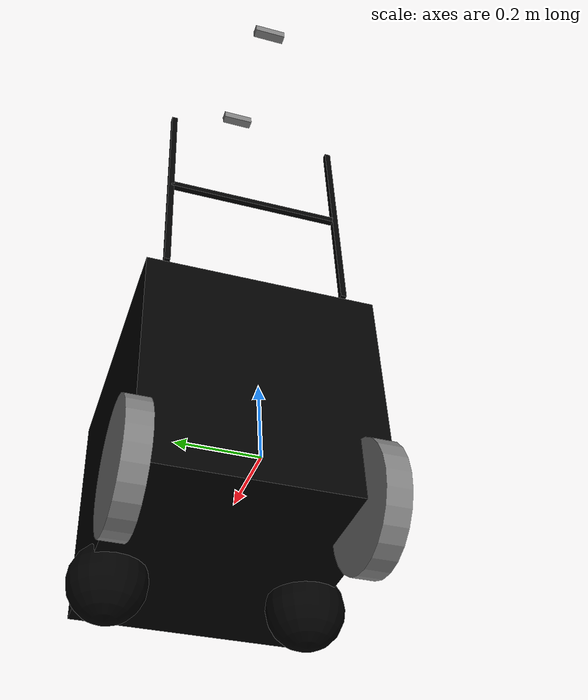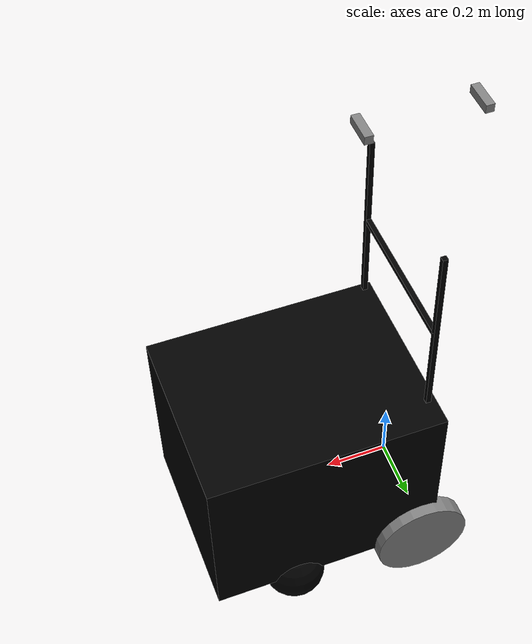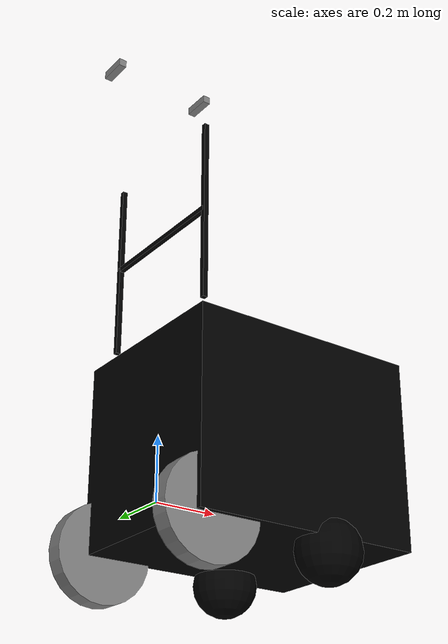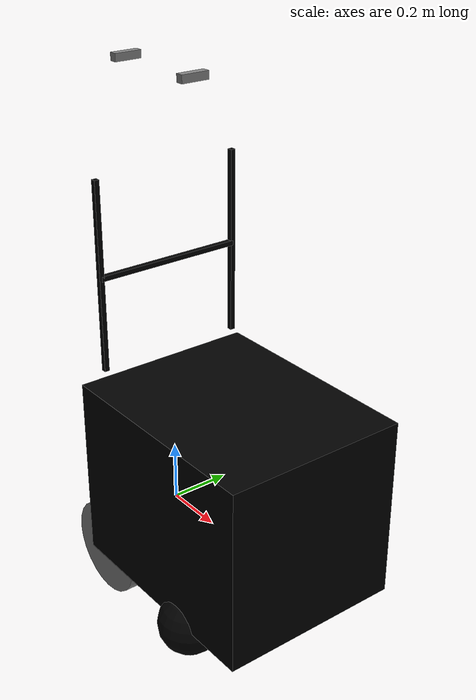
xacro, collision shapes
<?xml version="1.0" encoding="UTF-8"?>
<robot name="wheelchair2" xmlns:xacro="http://www.ros.org/wiki/xacro">

    <xacro:arg name="use_sim_time" default="false" />
    <xacro:arg name="use_nominal_extrinsics" default="false" />
    <xacro:arg name="add_plug" default="false" />
    <xacro:arg name="use_mesh" default="true" />

    <xacro:include filename="$(find wheelchair2_description)/urdf/links_joints.urdf.xacro" />
    <xacro:include filename="$(find wheelchair2_description)/urdf/ducky_kangaroo_ros2_control.urdf.xacro" />
    <xacro:include filename="$(find wheelchair2_description)/urdf/realsense.urdf.xacro" />

    <link name="base_footprint" />

    <joint name="base_footprint_joint" type="fixed">
        <parent link="base_footprint" />
        <child link="base_link" />
        <origin xyz="0.22 0 0.2" rpy="0 0 0" />
    </joint>

    <link name="base_link">
        <pose>0 0 0.1 0 0 0</pose>
        <inertial>
            <mass value="8.96"/>
            <origin xyz="0 0 0" rpy="0 0 0"/>
            <inertia ixx="2.83" ixy="-0.12" ixz="-1.17" iyy="3.47" iyz="0.29" izz="0.73"/>
        </inertial>
        <collision>
            <origin xyz="0.1 0 0" rpy="0 0 0"/>
            <geometry>
                <box size="0.75 0.60 0.60"/>
            </geometry>
            <material name="black"/>
        </collision>
        <visual>
            <origin xyz="0 0 0" rpy="0 0 ${pi}"/>
            <geometry>
                <mesh filename="file://$(find wheelchair2_description)/meshes/wheelchair2.dae" scale="0.01 0.01 0.01"/>
            </geometry>
            <material name="black"/>
        </visual>
    </link>

    <xacro:m1_link_cylinder name="left_wheel" origin_rpy="0 0 0" origin_xyz="0 0 0.027" mass="0.10441" ixx="0.1000000042" ixy="0" ixz="0" iyy="0.1000000042" iyz="0" izz="0.1000000040" radius="0.155" length="0.06" radius_2="0.0028" length_2="0.005" material="grey" />
    <xacro:w_joint name="base_link_to_left_wheel" type="continuous" axis_xyz="0 0 1" axis_rpy="0 0 0" limit_e="100" limit_v="20" damping="1.0" friction="0.01" origin_rpy="-${pi/2} 0 0" origin_xyz="-0.22 0.28 -0.285" parent="base_link" child="left_wheel" />

    <xacro:m1_link_cylinder name="right_wheel" origin_rpy="0 0 0" origin_xyz="0 0 0.027" mass="0.10441" ixx="0.1000000042" ixy="0" ixz="0" iyy="0.1000000042" iyz="0" izz="0.1000000040" radius="0.155" length="0.06" radius_2="0.0028" length_2="0.005" material="grey" />
    <xacro:w_joint name="base_link_to_right_wheel" type="continuous" axis_xyz="0 0 1" axis_rpy="0 0 0" limit_e="100" limit_v="20" damping="1.0" friction="0.01" origin_rpy="-${pi/2} 0 0" origin_xyz="-0.22 -0.28 -0.285" parent="base_link" child="right_wheel" />

    <xacro:m_link_sphere name="caster1" origin_rpy="0 0 0" origin_xyz="0 0 0" mass="0.45164" ixx="0.100000005621" ixy="0.100000001310" ixz="0.100000001649" iyy="0.100000004345" iyz="0.100000002360" izz="0.100000003315" material="black" radius="0.1" radius_2="0.001" />
    <xacro:f_joint name="base_link_to_caster1" type="fixed" axis_xyz="0 0 0" origin_rpy="0 0 0" origin_xyz="0.2 -0.25 -0.33" parent="base_link" child="caster1" />

    <xacro:m_link_sphere name="caster2" origin_rpy="0 0 0" origin_xyz="0 0 0" mass="0.45164" ixx="0.100000005621" ixy="0.100000001310" ixz="0.100000001649" iyy="0.100000004345" iyz="0.100000002360" izz="0.100000003315" material="black" radius="0.1" radius_2="0.001" />
    <xacro:f_joint name="base_link_to_caster2" type="fixed" axis_xyz="0 0 0" origin_rpy="0 0 0" origin_xyz="0.2 0.25 -0.33" parent="base_link" child="caster2" />

    <xacro:f_link_box name="rod1" origin_rpy="0 0 0" origin_xyz="0 0 0" mass="0.45164" ixx="0.100000005621" ixy="0.100000001310" ixz="0.100000001649" iyy="0.100000004345" iyz="0.100000002360" izz="0.100000003315" material="black" size="0.016 0.016 0.6" />
    <xacro:f_joint name="base_link_to_rod1" type="fixed" axis_xyz="0 0 0" origin_rpy="0 0 0" origin_xyz="-0.23 0.24 0.65" parent="base_link" child="rod1" />

    <xacro:f_link_box name="rod2" origin_rpy="0 0 0" origin_xyz="0 0 0" mass="0.45164" ixx="0.100000005621" ixy="0.100000001310" ixz="0.100000001649" iyy="0.100000004345" iyz="0.100000002360" izz="0.100000003315" material="black" size="0.016 0.016 0.6" />
    <xacro:f_joint name="base_link_to_rod2" type="fixed" axis_xyz="0 0 0" origin_rpy="0 0 0" origin_xyz="-0.23 -0.24 0.65" parent="base_link" child="rod2" />

    <xacro:f_link_box name="camera_base_rod" origin_rpy="0 0 0" origin_xyz="0 0 0" mass="0.45164" ixx="0.100000005621" ixy="0.100000001310" ixz="0.100000001649" iyy="0.100000004345" iyz="0.100000002360" izz="0.100000003315" material="black" size="0.016 0.48 0.016" />
    <xacro:f_joint name="base_link_to_camera_base_rod" type="fixed" axis_xyz="0 0 0" origin_rpy="0 0 0" origin_xyz="-0.23 0 0.650" parent="base_link" child="camera_base_rod" />

    <link name="camera_mount_link"/>
    <joint name="base_to_camera_mount" type="fixed">
        <parent link="base_link"/>
        <child link="camera_mount_link"/>
        <origin xyz="-0.19159 0 1.2144" rpy="0 0 0" />
    </joint>

    <xacro:realsense name="camera1" topics_ns="camera1" parent="camera_mount_link" use_sim_time="$(arg use_sim_time)">
        <origin xyz="0 0 0" rpy="0 0 0"/>
    </xacro:realsense>

    <xacro:realsense name="camera2" topics_ns="camera2" parent="camera_mount_link" use_sim_time="$(arg use_sim_time)">
        <origin xyz="-0.13 0 0" rpy="0 0 -${pi}"/>
    </xacro:realsense>

    <link name="livox_frame"/>
    <joint name="camera_link_to_livox_frame" type="fixed">
        <parent link="camera1_link" />
        <child link="livox_frame" />
        <origin xyz="-0.064156 0 -0.064846" rpy="-${pi} -0.0131 0" />
        <axis xyz="0 0 0" />
    </joint>

    <xacro:kangaroo_x2_driver name="kangaroo_ros2_control" prefix="" use_sim_time="$(arg use_sim_time)"></xacro:kangaroo_x2_driver>

    <xacro:if value="$(arg use_sim_time)">
        <gazebo>
            <plugin name="gz_ros2_control::GazeboSimROS2ControlPlugin" filename="libgz_ros2_control-system.so">
                <parameters>$(find wheelchair2_control)/config/wheelchair2_controllers.yaml</parameters>
            </plugin>
        </gazebo>
        <xacro:include filename="$(find wheelchair2_gazebo)/urdf/wheelchair2_gazebo.urdf.xacro" />
        <xacro:include filename="$(find wheelchair2_gazebo)/urdf/livox.urdf.xacro" />
    </xacro:if>

</robot>

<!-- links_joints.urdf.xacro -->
<robot xmlns:xacro="http://www.ros.org/wiki/xacro">
	<!--Include
	Files-->
	<xacro:include filename="$(find wheelchair2_description)/urdf/common_properties.urdf.xacro" />
	<!--macro
	for cylinder shaped links(r,lwheels and lidar)-->
	<xacro:macro name="m_link_cylinder"
		params="name origin_xyz origin_rpy mass ixx ixy ixz iyy iyz izz filename scale material ">
		<link name="${name}">
			<inertial>				<!--Inertial
				valuse include origin, mass and inertias as per CAD model-->
				<mass value="${mass}" />
				<origin rpy="${origin_rpy}" xyz="${origin_xyz}" />
				<inertia ixx="${ixx}" ixy="${ixy}" ixz="${ixz}" iyy="${iyy}" iyz="${iyz}" izz="${izz}" />
				<!--
				Taken at the output coordinate system-->
			</inertial>
			<collision>				<!-- Collision values include dimensions and origin-->
				<origin rpy="${origin_rpy}" xyz="${origin_xyz}" />
				<geometry>
					<mesh filename="${filename}" scale="${scale}" />
				</geometry>
			</collision>
			<visual>
				<origin rpy="${origin_rpy}" xyz="${origin_xyz}" />
				<geometry>
					<mesh filename="${filename}" scale="${scale}" />
				</geometry>
				<material name="${material}" />
			</visual>
		</link>
	</xacro:macro>

	<!--macro
	for cylinder shaped links(r,lwheels and lidar)-->
	<xacro:macro name="m1_link_cylinder"
		params="name origin_xyz origin_rpy mass radius length radius_2 length_2 ixx ixy ixz iyy iyz izz material ">
		<link name="${name}">
			<inertial>				<!--Inertial
				valuse include origin, mass and inertias as per CAD model-->
				<mass value="${mass}" />
				<origin rpy="${origin_rpy}" xyz="${origin_xyz}" />
				<inertia ixx="${ixx}" ixy="${ixy}" ixz="${ixz}" iyy="${iyy}" iyz="${iyz}" izz="${izz}" />
				<!--
				Taken at the output coordinate system-->
			</inertial>
			<collision>				<!-- Collision values include dimensions and origin-->
				<origin rpy="${origin_rpy}" xyz="${origin_xyz}" />
				<geometry>
					<cylinder radius="${radius}" length="${length}" />
				</geometry>
			</collision>
			<visual>				<!-- Visual valuse include origin, material and mesh to make model look similar to
				real robot-->
				<origin rpy="${origin_rpy}" xyz="${origin_xyz}" />
				<geometry>
					<cylinder radius="${radius_2}" length="${length_2}" />
				</geometry>
				<material name="${material}" />
			</visual>
		</link>
	</xacro:macro>

	<!--macro
	for box shaped links(r,lwheels and lidar)-->
	<xacro:macro name="m_link_box"
		params="name origin_xyz origin_rpy size mass ixx ixy ixz iyy iyz izz v_origin_xyz v_origin_rpy filename scale material ">
		<link name="${name}">
			<inertial>				<!--Inertial
				valuse include origin, mass and inertias as per CAD model-->
				<mass value="${mass}" />
				<origin rpy="${origin_rpy}" xyz="${origin_xyz}" />
				<inertia ixx="${ixx}" ixy="${ixy}" ixz="${ixz}" iyy="${iyy}" iyz="${iyz}" izz="${izz}" />
				<!--
				Taken at the output coordinate system-->
			</inertial>
			<collision>				<!-- Collision values include dimensions and origin-->
				<origin rpy="${origin_rpy}" xyz="${origin_xyz}" />
				<geometry>
					<box size="${size}" />
				</geometry>
			</collision>
			<visual>				<!-- Visual valuse include origin, material and mesh 0.057 0.083 0.29to make model
				look similar to real robot-->
				<origin rpy="${v_origin_rpy}" xyz="${v_origin_xyz}" />
				<geometry>
				</geometry>
				<material name="${material}" />
			</visual>
		</link>
	</xacro:macro>

	<xacro:macro name="f_link_box"
		params="name origin_xyz origin_rpy size mass ixx ixy ixz iyy iyz izz material ">
		<link name="${name}">
			<inertial>				<!--Inertial
				valuse include origin, mass and inertias as per CAD model-->
				<mass value="${mass}" />
				<origin rpy="${origin_rpy}" xyz="${origin_xyz}" />
				<inertia ixx="${ixx}" ixy="${ixy}" ixz="${ixz}" iyy="${iyy}" iyz="${iyz}" izz="${izz}" />
				<!--
				Taken at the output coordinate system-->
			</inertial>
			<collision>				<!-- Collision values include dimensions and origin-->
				<origin rpy="${origin_rpy}" xyz="${origin_xyz}" />
				<geometry>
					<box size="${size}" />
				</geometry>
			</collision>
			<visual>				<!-- Visual valuse include origin, material and mesh to make model look similar to
				real robot-->
				<origin rpy="${origin_rpy}" xyz="${origin_xyz}" />
				<geometry>
					<box size="${size}" />
				</geometry>
				<material name="${material}" />
			</visual>
		</link>
	</xacro:macro>

	<xacro:macro name="m_link_sphere"
		params="name origin_xyz origin_rpy radius radius_2 mass ixx ixy ixz iyy iyz izz material">
		<link name="${name}">
			<inertial>				<!--Inertial
				valuse include origin, mass and inertias as per CAD model-->
				<mass value="${mass}" />
				<origin rpy="${origin_rpy}" xyz="${origin_xyz}" />
				<inertia ixx="${ixx}" ixy="${ixy}" ixz="${ixz}" iyy="${iyy}" iyz="${iyz}" izz="${izz}" />
			</inertial>
			<collision>				<!-- Collision values include dimensions and origin-->
				<origin rpy="${origin_rpy}" xyz="${origin_xyz}" />
				<geometry>
					<sphere radius="${radius}" />
				</geometry>
			</collision>
			<visual>				<!-- Visual valuse include origin, material and mesh to make model look similar to
				real robot-->
				<origin rpy="${origin_rpy}" xyz="${origin_xyz}" />
				<geometry>
					<sphere radius="${radius_2}" />
				</geometry>
				<material name="${material}" />
			</visual>
		</link>
	</xacro:macro>
	<!-- macro of moving joints like l,rwheels-->
	<!-- It includes parent link, child link, limits, axis, origin, dynamics and transmission of the
	robot-->
	<xacro:macro name="m_joint"
		params="name type axis_xyz axis_rpy origin_rpy origin_xyz parent limit_e limit_v lower upper child damping friction ">
		<joint name="${name}" type="${type}">
			<axis xyz="${axis_xyz}" rpy="${axis_rpy}" />
			<limit effort="${limit_e}" velocity="${limit_v}" lower="${lower}" upper="${upper}" />
			<origin rpy="${origin_rpy}" xyz="${origin_xyz}" />
			<dynamics damping="${damping}" friction="${friction}" />
			<parent link="${parent}" />
			<child link="${child}" />
		</joint>
	</xacro:macro>

	<xacro:macro name="w_joint"
		params="name type axis_xyz axis_rpy origin_rpy origin_xyz parent limit_e limit_v child damping friction ">
		<joint name="${name}" type="${type}">
			<axis xyz="${axis_xyz}" rpy="${axis_rpy}" />
			<limit effort="${limit_e}" velocity="${limit_v}" />
			<origin rpy="${origin_rpy}" xyz="${origin_xyz}" />
			<dynamics damping="${damping}" friction="${friction}" />
			<parent link="${parent}" />
			<child link="${child}" />
		</joint>
	</xacro:macro>

	<xacro:macro name="m2_joint"
		params="name type axis_xyz axis_rpy origin_rpy origin_xyz parent limit_e limit_v lower upper child damping friction ">
		<joint name="${name}" type="${type}">
			<axis xyz="${axis_xyz}" rpy="${axis_rpy}" />
			<limit effort="${limit_e}" velocity="${limit_v}" lower="${lower}" upper="${upper}" />
			<origin rpy="${origin_rpy}" xyz="${origin_xyz}" />
			<dynamics damping="${damping}" friction="${friction}" />
			<parent link="${parent}" />
			<child link="${child}" />
		</joint>
	</xacro:macro>

	<xacro:macro name="mimic_joint"
		params="name type axis_xyz axis_rpy origin_rpy origin_xyz parent joint multiplier offset limit_e limit_v lower upper child damping friction ">
		<joint name="${name}" type="${type}">
			<axis xyz="${axis_xyz}" rpy="${axis_rpy}" />
			<limit effort="${limit_e}" velocity="${limit_v}" lower="${lower}" upper="${upper}" />
			<origin rpy="${origin_rpy}" xyz="${origin_xyz}" />
			<dynamics damping="${damping}" friction="${friction}" />
			<parent link="${parent}" />
			<child link="${child}" />
			<mimic joint="${joint}" multiplier="${multiplier}" offset="${offset}" />
		</joint>
	</xacro:macro>

	<!-- macro of fixed joints like casters and rplidar-->
	<!-- It includes parent link, child link, axis and origin of the robot-->
	<xacro:macro name="f_joint" params="name type axis_xyz origin_rpy origin_xyz parent child">
		<joint name="${name}" type="${type}">
			<axis xyz="${axis_xyz}" />
			<origin rpy="${origin_rpy}" xyz="${origin_xyz}" />
			<parent link="${parent}" />
			<child link="${child}" />
		</joint>
	</xacro:macro>

</robot>

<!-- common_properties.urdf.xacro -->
<robot name="xacro_properties" xmlns:xacro="http://www.ros.org/wiki/xacro">

	<material name="grey">
		<color rgba="0.5 0.5 0.5 1.0" />
	</material>

	<material name="black">
		<color rgba="0.0 0.0 0.0 1.0" />
	</material>

	<material name="red">
		<color rgba="1.0 0.0 0.0 1.0" />
	</material>
	<material name="green">
		<color rgba="0.0 1.0 0.0 1.0" />
	</material>

</robot>

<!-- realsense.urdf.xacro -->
<robot name="realsense"
	xmlns:xacro="http://ros.org/wiki/xacro">
	<xacro:macro name="realsense" params="name:=camera topics_ns:=camera pointcloud:=false parent *origin use_sim_time">
		<xacro:property name="M_PI" value="3.1415926535897931" />

		<!-- The following values are approximate, and the camera node
     publishing TF values with actual calibrated camera extrinsic values -->
		<xacro:property name="d435_cam_depth_to_left_ir_offset" value="0.0" />
		<xacro:property name="d435_cam_depth_to_right_ir_offset" value="-0.050" />
		<xacro:property name="d435_cam_depth_to_color_offset" value="0.015" />

		<!-- The following values model the aluminum peripherial case for the
  	D435 camera, with the camera joint represented by the actual
  	peripherial camera tripod mount -->
		<xacro:property name="d435_cam_width" value="0.090" />
		<xacro:property name="d435_cam_height" value="0.025" />
		<xacro:property name="d435_cam_depth" value="0.02505" />
		<xacro:property name="d435_cam_mount_from_center_offset" value="0.0149" />

		<!-- The following offset is relative the the physical D435 camera peripherial
  	camera tripod mount -->
		<xacro:property name="d435_cam_depth_px" value="${d435_cam_mount_from_center_offset}" />
		<xacro:property name="d435_cam_depth_py" value="0.0175" />
		<xacro:property name="d435_cam_depth_pz" value="${d435_cam_height/2}" />

		<material name="${name}_aluminum">
			<color rgba="0.5 0.5 0.5 1" />
		</material>

		<!-- camera body, with origin at bottom screw mount -->
		<joint name="${name}_joint" type="fixed">
			<xacro:insert_block name="origin" />
			<parent link="${parent}" />
			<child link="${name}_bottom_screw_frame" />
		</joint>
		<link name="${name}_bottom_screw_frame" />

		<joint name="${name}_link_joint" type="fixed">
			<origin xyz="0.1 ${d435_cam_depth_py} ${d435_cam_depth_pz}" rpy="0 0 0" />
			<parent link="${name}_bottom_screw_frame" />
			<child link="${name}_link" />
		</joint>

		<link name="${name}_link">
			<visual>
				<origin xyz="${d435_cam_mount_from_center_offset} ${-d435_cam_depth_py} 0" rpy="${M_PI/2} 0 ${M_PI/2}" />
				<geometry>
					<mesh filename="file://$(find wheelchair2_description)/meshes/d435.dae" />
				</geometry>
				<material name="${name}_aluminum" />
			</visual>
			<collision>
				<origin xyz="0 ${-d435_cam_depth_py} 0" rpy="0 0 0" />
				<geometry>
					<box size="${d435_cam_depth} ${d435_cam_width} ${d435_cam_height}" />
				</geometry>
			</collision>
			<inertial>
				<!-- The following are not reliable values, and should not be used for modeling -->
				<mass value="0.564" />
				<origin xyz="0 0 0" />
				<inertia ixx="0.003881243" ixy="0.0" ixz="0.0" iyy="0.000498940" iyz="0.0" izz="0.003879257" />
			</inertial>
		</link>

		<!-- camera depth joints and links -->
		<joint name="${name}_depth_joint" type="fixed">
			<origin xyz="0 0 0" rpy="0 0 0" />
			<parent link="${name}_link" />
			<child link="${name}_depth_frame" />
		</joint>
		<link name="${name}_depth_frame" />

		<joint name="${name}_depth_optical_joint" type="fixed">
			<origin xyz="0 0 0" rpy="${-M_PI/2} 0 ${-M_PI/2}" />
			<parent link="${name}_depth_frame" />
			<child link="${name}_depth_optical_frame" />
		</joint>
		<link name="${name}_depth_optical_frame" />

		<!-- camera left IR joints and links -->
		<joint name="${name}_left_ir_joint" type="fixed">
			<origin xyz="0 ${d435_cam_depth_to_left_ir_offset} 0" rpy="0 0 0" />
			<parent link="${name}_depth_frame" />
			<child link="${name}_left_ir_frame" />
		</joint>
		<link name="${name}_left_ir_frame" />

		<joint name="${name}_left_ir_optical_joint" type="fixed">
			<origin xyz="0 0 0" rpy="${-M_PI/2} 0 ${-M_PI/2}" />
			<parent link="${name}_left_ir_frame" />
			<child link="${name}_left_ir_optical_frame" />
		</joint>
		<link name="${name}_left_ir_optical_frame" />

		<!-- camera right IR joints and links -->
		<joint name="${name}_right_ir_joint" type="fixed">
			<origin xyz="0 ${d435_cam_depth_to_right_ir_offset} 0" rpy="0 0 0" />
			<parent link="${name}_depth_frame" />
			<child link="${name}_right_ir_frame" />
		</joint>
		<link name="${name}_right_ir_frame" />

		<joint name="${name}_right_ir_optical_joint" type="fixed">
			<origin xyz="0 0 0" rpy="${-M_PI/2} 0 ${-M_PI/2}" />
			<parent link="${name}_right_ir_frame" />
			<child link="${name}_right_ir_optical_frame" />
		</joint>
		<link name="${name}_right_ir_optical_frame" />

		<!-- camera color joints and links -->
		<joint name="${name}_color_joint" type="fixed">
			<origin xyz="0 ${d435_cam_depth_to_color_offset} 0" rpy="0 0 0" />
			<parent link="${name}_depth_frame" />
			<child link="${name}_color_frame" />
		</joint>
		<link name="${name}_color_frame" />

		<joint name="${name}_color_optical_joint" type="fixed">
			<origin xyz="0 0 0" rpy="${-M_PI/2} 0 ${-M_PI/2}" />
			<parent link="${name}_color_frame" />
			<child link="${name}_color_optical_frame" />
		</joint>
		<link name="${name}_color_optical_frame" />

		<xacro:if value="${use_sim_time}">
			<!-- Realsense Gazebo Plugin -->
			<gazebo reference="camera_link">
				<material>Gazebo/Black</material>

				<sensor name="camera" type="camera">
					<pose> 0 0 0 0 0 0 </pose>
					<visualize>true</visualize>
					<update_rate>10</update_rate>
					<camera>
						<camera_info_topic>camera/camera_info</camera_info_topic>
						<horizontal_fov>1.089</horizontal_fov>
						<image>
							<format>R8G8B8</format>
							<width>640</width>
							<height>480</height>
						</image>
						<clip>
							<near>0.05</near>
							<far>8.0</far>
						</clip>
					</camera>
					<topic>camera/image_raw</topic>
					<gz_frame_id>camera_link</gz_frame_id>
				</sensor>
			</gazebo>
		</xacro:if>

	</xacro:macro>
</robot>
